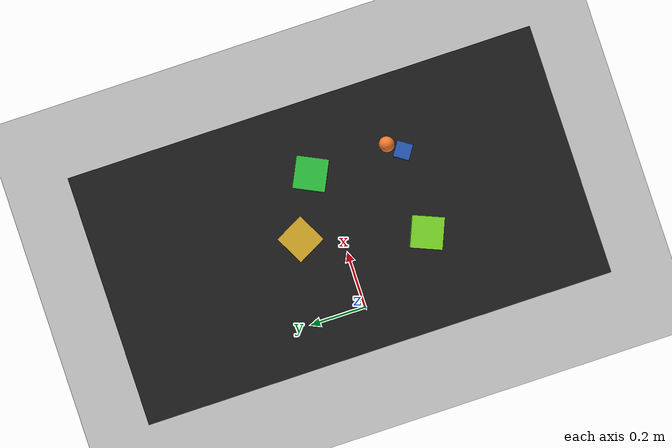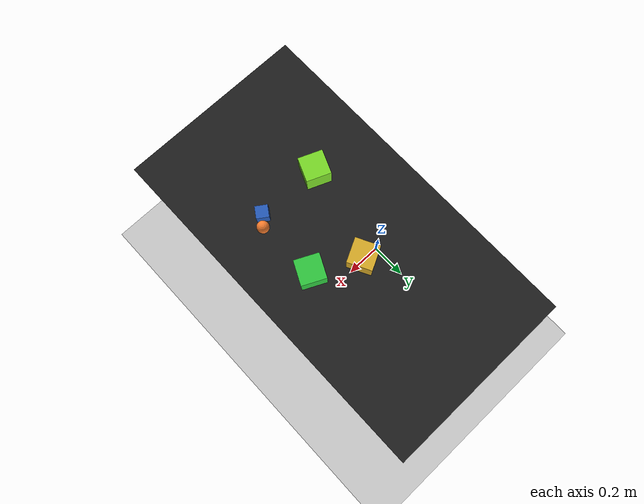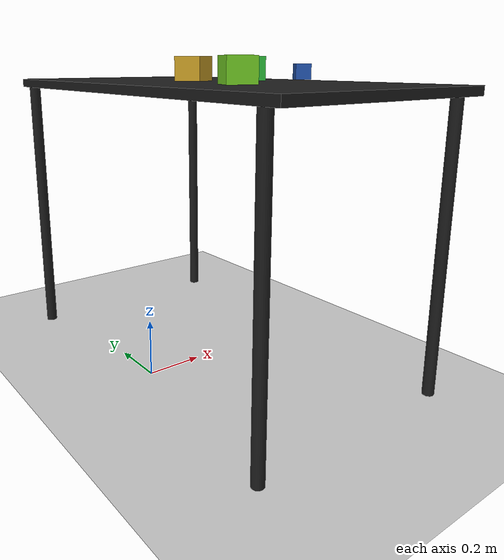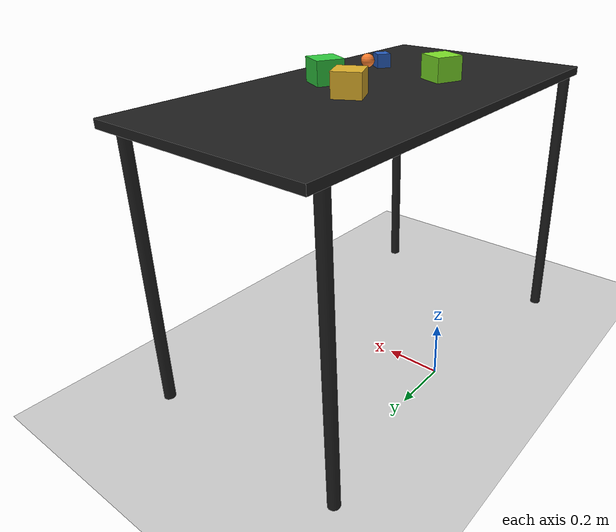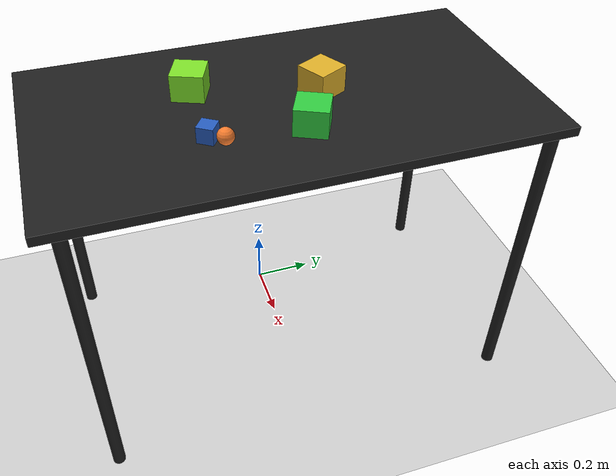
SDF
<?xml version="1.0" ?>
<sdf version="1.6">
  <world name="arm_world">
    <plugin filename="gz-sim-physics-system" name="gz::sim::systems::Physics">
      <engine>
        <filename>libgz-physics-bullet-featherstone-plugin.so</filename>
      </engine>
    </plugin>
    <plugin filename="gz-sim-user-commands-system" name="gz::sim::systems::UserCommands"/>
    <plugin filename="gz-sim-scene-broadcaster-system" name="gz::sim::systems::SceneBroadcaster"/>
    <plugin filename="gz-sim-sensors-system" name="gz::sim::systems::Sensors">
      <render_engine>ogre2</render_engine>
    </plugin>
    <gravity>0.0 0.0 -9.8</gravity>
    <scene>
      <shadows>false</shadows>
    </scene>
    <gui>
      <camera name="user_camera">
        <pose>0.75 -0.75 1.4 0 0.29 2.21</pose>
      </camera>
    </gui>
    <include>
      <uri>https://fuel.gazebosim.org/1.0/OpenRobotics/models/Sun</uri>
    </include>
    <model name="table">
      <static>true</static>
      <include>
        <uri>model://table</uri>
      </include>
      <pose>0.29 0 0 0 0 1.5708</pose>
    </model>
    <model name="ground_plane">
      <static>true</static>
      <link name="link">
        <collision name="collision">
          <geometry>
            <plane>
              <normal>0 0 1</normal>
            </plane>
          </geometry>
          <surface>
            <friction>
              <ode>
                <mu>1.0</mu>
                <mu2>1.0</mu2>
              </ode>
            </friction>
          </surface>
        </collision>
        <visual name="visual">
          <geometry>
            <plane>
              <normal>0 0 1</normal>
              <size>100 100</size>
            </plane>
          </geometry>
          <material>
            <ambient>0.8 0.8 0.8 1</ambient>
            <diffuse>0.8 0.8 0.8 1</diffuse>
            <specular>0.8 0.8 0.8 1</specular>
          </material>
        </visual>
      </link>
    </model>
    <model name="cube_l_0">
      <pose>0.184 -0.248 1.05 0 0 4.32</pose>
      <link name="cube_l_0_link">
        <collision name="cube_l_0_collision">
          <geometry>
            <box>
              <size>0.1 0.1 0.1</size>
            </box>
          </geometry>
        </collision>
        <visual name="cube_l_0_visual">
          <geometry>
            <box>
              <size>0.1 0.1 0.1</size>
            </box>
          </geometry>
          <material>
            <ambient>0.49 0.87 0.16 1</ambient>
            <diffuse>0.49 0.87 0.16 1</diffuse>
          </material>
        </visual>
        <velocity_decay>
          <linear>1</linear>
          <angular>1</angular>
        </velocity_decay>
      </link>
    </model>
    <model name="cube_l_1">
      <pose>0.466 0.034 1.05 0 0 2.69</pose>
      <link name="cube_l_1_link">
        <collision name="cube_l_1_collision">
          <geometry>
            <box>
              <size>0.1 0.1 0.1</size>
            </box>
          </geometry>
        </collision>
        <visual name="cube_l_1_visual">
          <geometry>
            <box>
              <size>0.1 0.1 0.1</size>
            </box>
          </geometry>
          <material>
            <ambient>0.19 0.79 0.25 1</ambient>
            <diffuse>0.19 0.79 0.25 1</diffuse>
          </material>
        </visual>
        <velocity_decay>
          <linear>1</linear>
          <angular>1</angular>
        </velocity_decay>
      </link>
    </model>
    <model name="cube_l_2">
      <pose>0.286 0.126 1.05 0 0 2.05</pose>
      <link name="cube_l_2_link">
        <collision name="cube_l_2_collision">
          <geometry>
            <box>
              <size>0.1 0.1 0.1</size>
            </box>
          </geometry>
        </collision>
        <visual name="cube_l_2_visual">
          <geometry>
            <box>
              <size>0.1 0.1 0.1</size>
            </box>
          </geometry>
          <material>
            <ambient>0.86 0.68 0.16 1</ambient>
            <diffuse>0.86 0.68 0.16 1</diffuse>
          </material>
        </visual>
        <velocity_decay>
          <linear>1</linear>
          <angular>1</angular>
        </velocity_decay>
      </link>
    </model>
    <model name="cube_m_3">
      <pose>0.446 -0.257 1.05 0 0 4.12</pose>
      <link name="cube_m_3_link">
        <collision name="cube_m_3_collision">
          <geometry>
            <box>
              <size>0.05 0.05 0.05</size>
            </box>
          </geometry>
        </collision>
        <visual name="cube_m_3_visual">
          <geometry>
            <box>
              <size>0.05 0.05 0.05</size>
            </box>
          </geometry>
          <material>
            <ambient>0.15 0.36 0.74 1</ambient>
            <diffuse>0.15 0.36 0.74 1</diffuse>
          </material>
        </visual>
        <velocity_decay>
          <linear>1</linear>
          <angular>1</angular>
        </velocity_decay>
      </link>
    </model>
    <model name="sphere_m_4">
      <pose>0.48 -0.216 1.05 0 0 0.3</pose>
      <link name="sphere_m_4_link">
        <collision name="sphere_m_4_collision">
          <geometry>
            <sphere>
              <radius>0.025</radius>
            </sphere>
          </geometry>
        </collision>
        <visual name="sphere_m_4_visual">
          <geometry>
            <sphere>
              <radius>0.025</radius>
            </sphere>
          </geometry>
          <material>
            <ambient>0.97 0.49 0.18 1</ambient>
            <diffuse>0.97 0.49 0.18 1</diffuse>
          </material>
        </visual>
        <velocity_decay>
          <linear>1</linear>
          <angular>1</angular>
        </velocity_decay>
      </link>
    </model>
  </world>
</sdf>

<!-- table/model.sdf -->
<sdf version="1.5">
  <model name="table">
    <static>true</static>
    <link name="link">
      <collision name="surface">
        <pose>0 0 1.0 0 0 0</pose>
        <geometry>
          <box>
            <size>1.5 0.8 0.03</size>
          </box>
        </geometry>
        <surface>
          <friction>
            <ode>
              <mu>0.6</mu>
              <mu2>0.6</mu2>
            </ode>
          </friction>
        </surface>
      </collision>
      <visual name="surface">
        <pose>0 0 1.0 0 0 0</pose>
        <geometry>
          <box>
            <size>1.5 0.8 0.03</size>
          </box>
        </geometry>
        <material>
          <script>
            <uri>file://media/materials/scripts/gazebo.material</uri>
            <name>Gazebo/Black</name>
          </script>
        </material>
      </visual>
      <collision name="front_left_leg">
        <pose>0.68 0.38 0.5 0 0 0</pose>
        <geometry>
          <cylinder>
            <radius>0.02</radius>
            <length>1.0</length>
          </cylinder>
        </geometry>
      </collision>
      <visual name="front_left_leg">
        <pose>0.68 0.38 0.5 0 0 0</pose>
        <geometry>
          <cylinder>
            <radius>0.02</radius>
            <length>1.0</length>
          </cylinder>
        </geometry>
        <material>
          <script>
            <uri>file://media/materials/scripts/gazebo.material</uri>
            <name>Gazebo/Black</name>
          </script>
        </material>
      </visual>
      <collision name="front_right_leg">
        <pose>0.68 -0.38 0.5 0 0 0</pose>
        <geometry>
          <cylinder>
            <radius>0.02</radius>
            <length>1.0</length>
          </cylinder>
        </geometry>
      </collision>
      <visual name="front_right_leg">
        <pose>0.68 -0.38 0.5 0 0 0</pose>
        <geometry>
          <cylinder>
            <radius>0.02</radius>
            <length>1.0</length>
          </cylinder>
        </geometry>
        <material>
          <script>
            <uri>file://media/materials/scripts/gazebo.material</uri>
            <name>Gazebo/Black</name>
          </script>
        </material>
      </visual>
      <collision name="back_right_leg">
        <pose>-0.68 -0.38 0.5 0 0 0</pose>
        <geometry>
          <cylinder>
            <radius>0.02</radius>
            <length>1.0</length>
          </cylinder>
        </geometry>
      </collision>
      <visual name="back_right_leg">
        <pose>-0.68 -0.38 0.5 0 0 0</pose>
        <geometry>
          <cylinder>
            <radius>0.02</radius>
            <length>1.0</length>
          </cylinder>
        </geometry>
        <material>
          <script>
            <uri>file://media/materials/scripts/gazebo.material</uri>
            <name>Gazebo/Black</name>
          </script>
        </material>
      </visual>
      <collision name="back_left_leg">
        <pose>-0.68 0.38 0.5 0 0 0</pose>
        <geometry>
          <cylinder>
            <radius>0.02</radius>
            <length>1.0</length>
          </cylinder>
        </geometry>
      </collision>
      <visual name="back_left_leg">
        <pose>-0.68 0.38 0.5 0 0 0</pose>
        <geometry>
          <cylinder>
            <radius>0.02</radius>
            <length>1.0</length>
          </cylinder>
        </geometry>
        <material>
          <script>
            <uri>file://media/materials/scripts/gazebo.material</uri>
            <name>Gazebo/Black</name>
          </script>
        </material>
      </visual>
    </link>
  </model>
</sdf>
